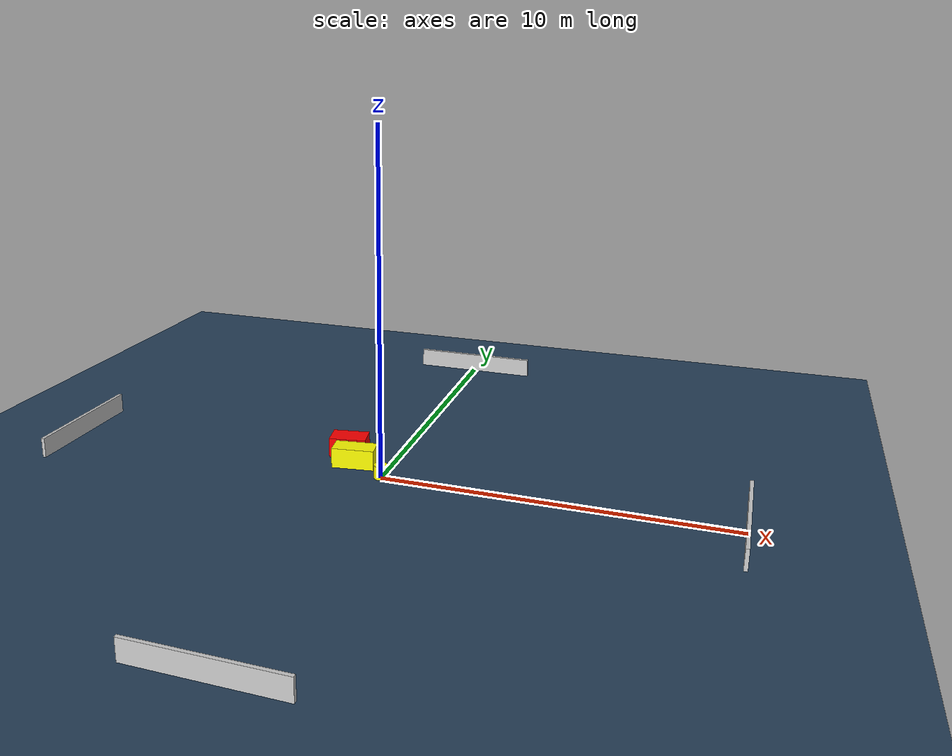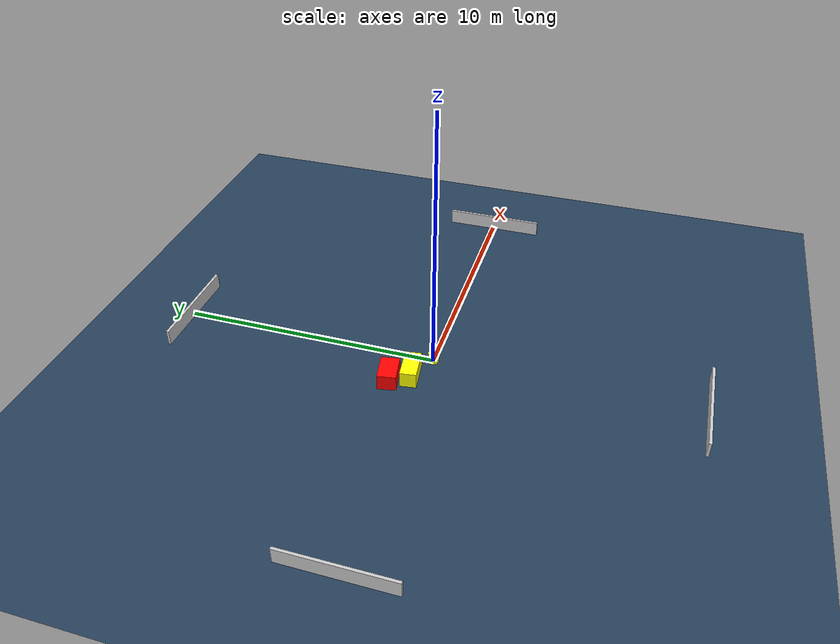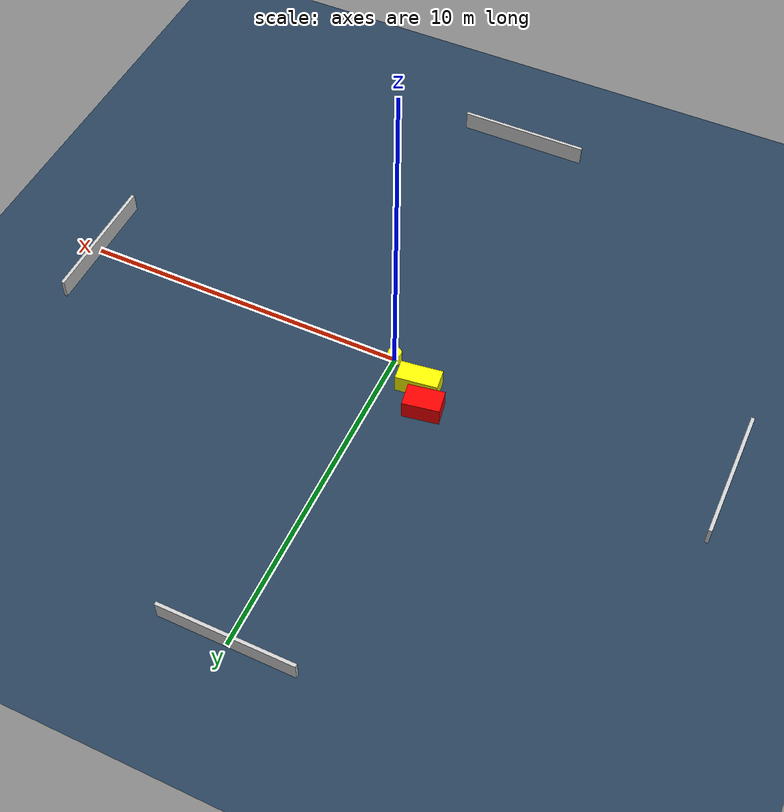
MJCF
<?xml version="1.0" ?>
<mujoco model="generated_environment">
  <option timestep="0.01" integrator="RK4" cone="elliptic"/>
  <default>
    <geom density="1"/>
  </default>
  <asset>
    <texture builtin="gradient" height="3072" name="skybox" rgb1="0.3 0.5 0.7" rgb2="0 0 0" type="skybox" width="512"/>
    <texture builtin="checker" height="300" name="groundplane" rgb1="0.2 0.3 0.4" rgb2="0.1 0.2 0.3" type="2d" width="300"/>
    <material name="groundplane" reflectance="0.2" texrepeat="5 5" texture="groundplane"/>
  </asset>
  <worldbody>
    <light dir="0 0 -1" directional="true" pos="0 0 1.5"/>
    <geom condim="3" friction="0.5 0.005 0.001" material="groundplane" name="floor" pos="0 0 0" size="0 0 0.05" type="plane"/>
    <body name="walls">
      <geom name="wall_1" condim="4" pos="-10.0 0.0 0.3" rgba="0.800000011920929 0.800000011920929 0.800000011920929 1.0" size="0.05 2.0 0.3" type="box"/>
      <geom name="wall_2" condim="4" pos="10.0 0.0 0.3" rgba="0.800000011920929 0.800000011920929 0.800000011920929 1.0" size="0.05 2.0 0.3" type="box"/>
      <geom name="wall_3" condim="4" pos="0.0 -10.0 0.3" rgba="0.800000011920929 0.800000011920929 0.800000011920929 1.0" size="2.0 0.05 0.3" type="box"/>
      <geom name="wall_4" condim="4" pos="0.0 10.0 0.3" rgba="0.800000011920929 0.800000011920929 0.800000011920929 1.0" size="2.0 0.05 0.3" type="box"/>
    </body>
    <body name="robot">
      <joint name="joint_x" type="slide" pos="0 0 0" axis="1 0 0"/>
      <joint name="joint_y" type="slide" pos="0 0 0" axis="0 1 0"/>
      <geom name="robot" type="cylinder" pos="0.0 0.0 0.2" size="0.2 0.2 0.0" mass="5.0" friction="1.0 0.005 0.0001" condim="4" rgba="1.0 1.0 0.0 1.0"/>
    </body>
    <body name="obstacle_1_movable">
      <geom name="obstacle_1_movable" condim="4" pos="-1.0259428961075858 0.5776138417143623 0.3" euler="0 0 277.55716397035576" friction="0.0 0.005 0.001" rgba="1.0 1.0 0.0 1.0" size="0.3086772338579321 0.6257467502534506 0.3" type="box" mass="0.1"/>
      <joint type="free"/>
    </body>
    <body name="obstacle_2_static">
      <geom name="obstacle_2_static" condim="4" pos="-1.476247223703583 1.2785403041606593 0.3" euler="0 0 99.84993070380295" friction="0.0 0.005 0.001" rgba="1.0 0.0 0.0 1.0" size="0.35229276998241044 0.5461417838856031 0.3" type="box"/>
    </body>
  </worldbody>
  <actuator>
    <motor name="actuator_x" joint="joint_x" gear="1" ctrlrange="-1 1"/>
    <motor name="actuator_y" joint="joint_y" gear="1" ctrlrange="-1 1"/>
  </actuator>
</mujoco>
